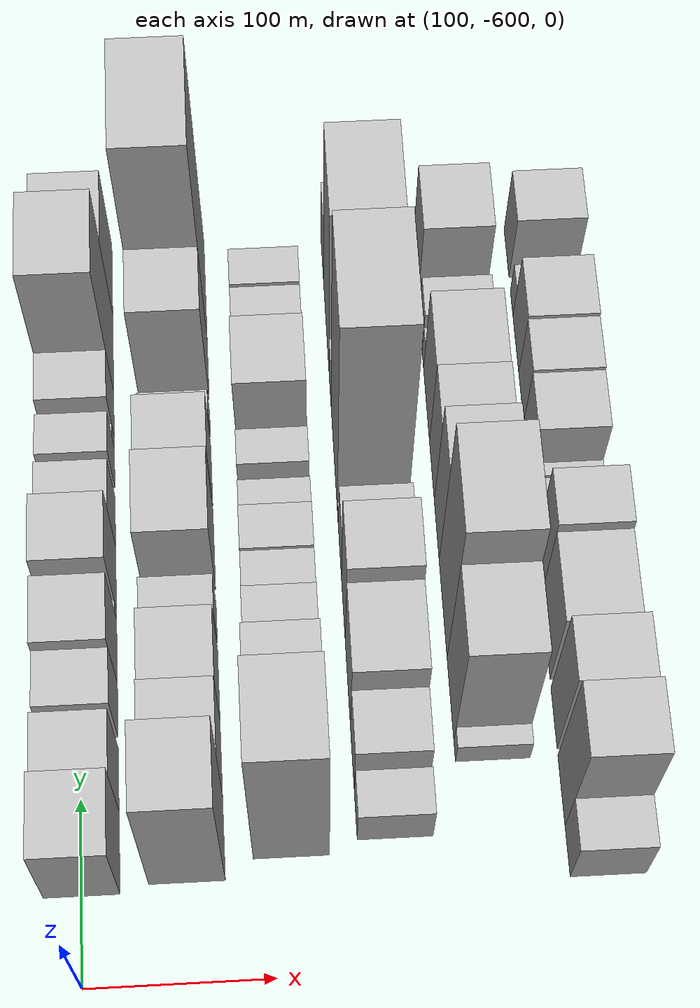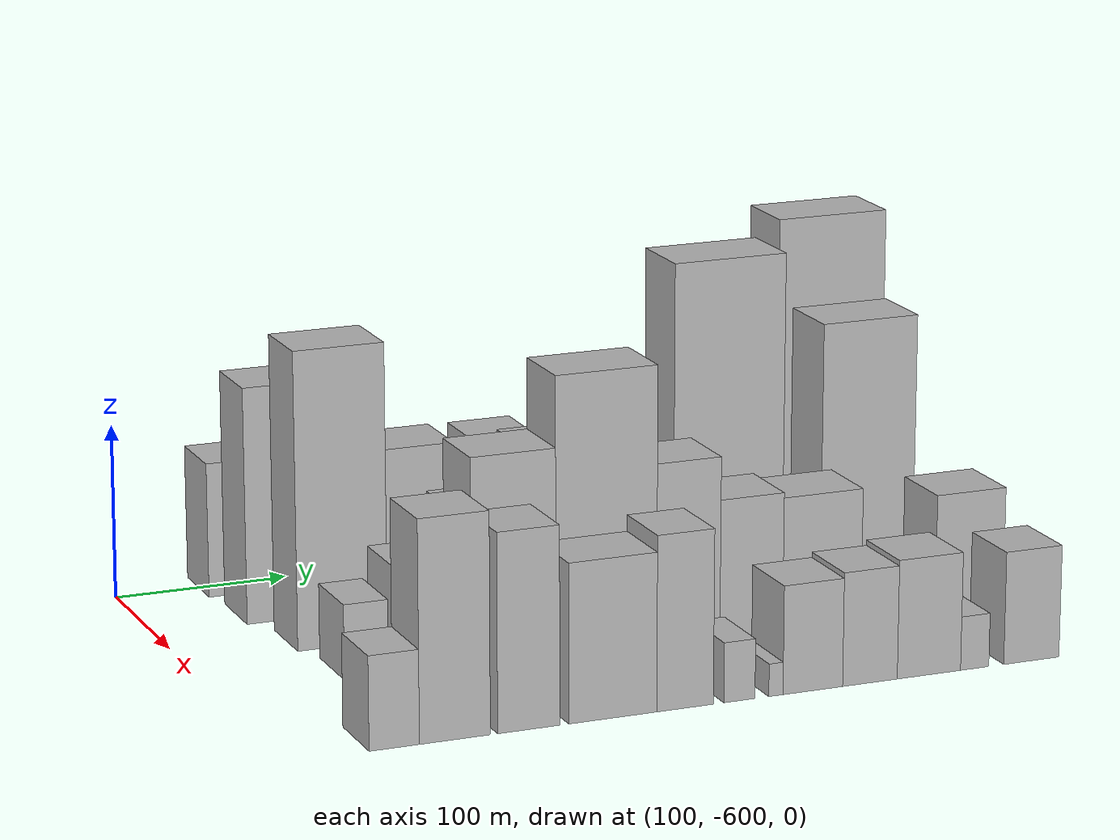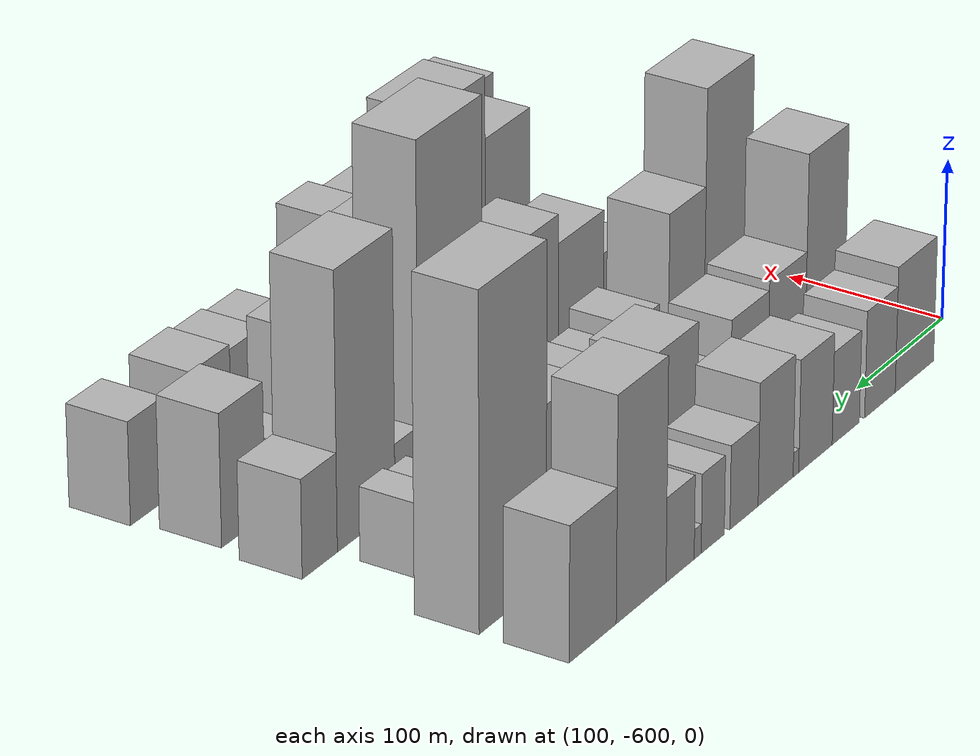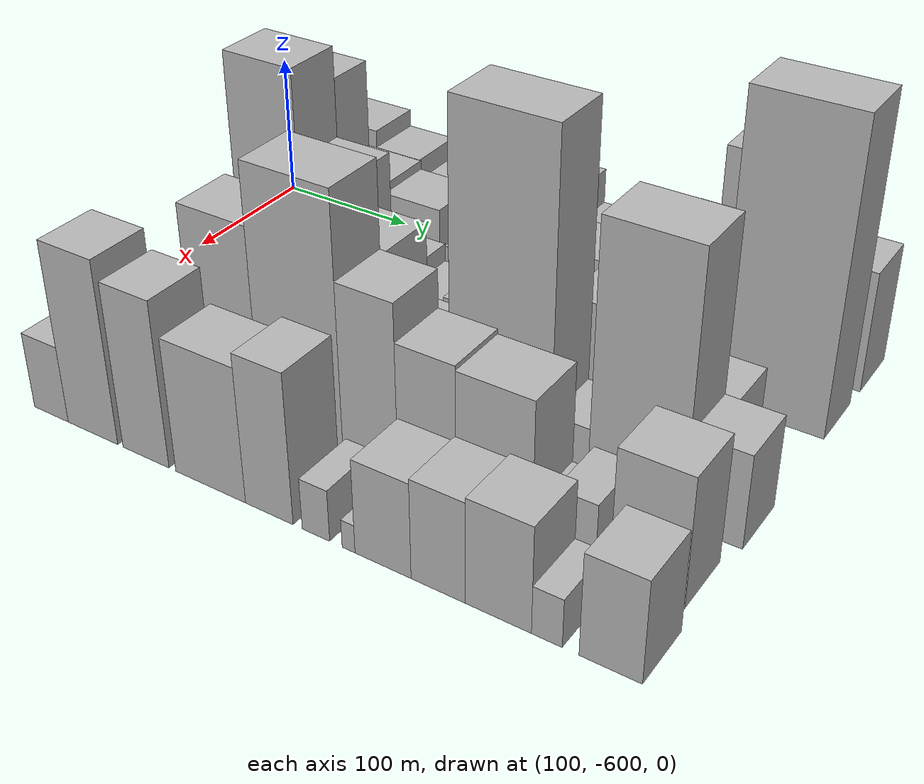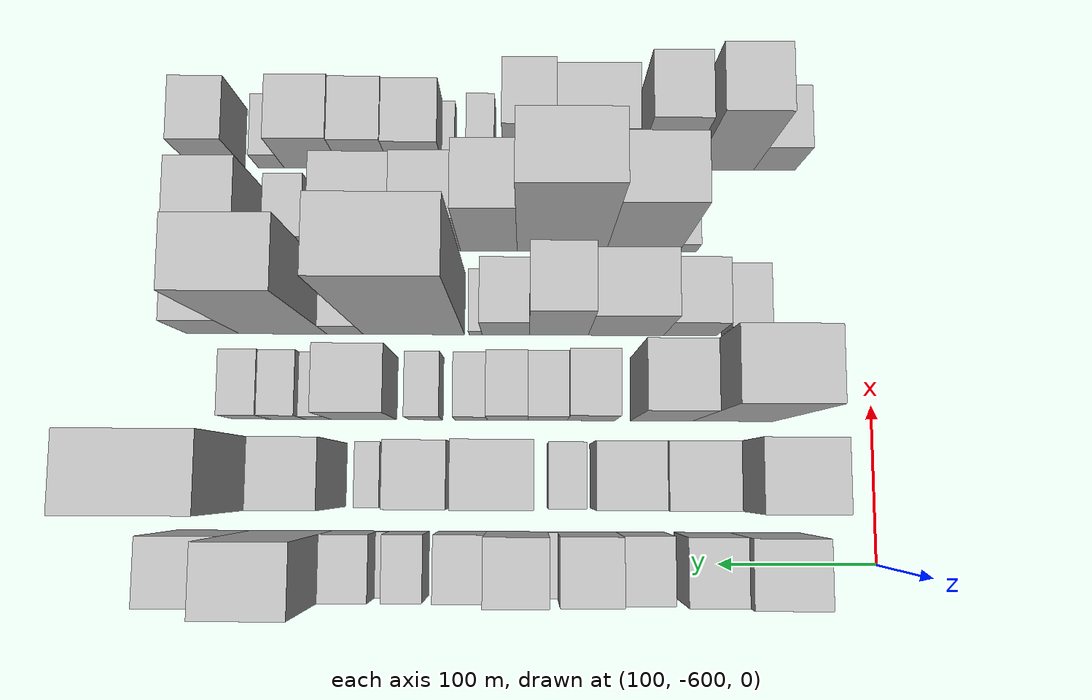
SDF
<sdf version="1.6">
 <world name="default">
  <model name="building_11">
   <static>1</static>
   <pose>100.0000 -529.7301 0 0.000000 0.000000 0.000000</pose>
   <link name="link">
    <pose>0 0 39.00 0 0 0</pose>
    <collision name="collision"><geometry><box><size>40.0000 44.5044 78.0000</size></box></geometry></collision>
    <visual name="visual">
     <cast_shadows>0</cast_shadows>
     <geometry><box><size>40.0000 44.5044 78.0000</size></box></geometry>
     <material>
      <script>
       <uri>model://HANNAS_wall/materials/scripts</uri>
       <uri>model://HANNAS_wall/materials/textures</uri>
       <name>vrc/HANNAS_wall</name>
      </script>
     </material>
    </visual>
   </link>
  </model>
  <model name="building_12">
   <static>1</static>
   <pose>100.0000 -490.0236 0 0.000000 0.000000 0.000000</pose>
   <link name="link">
    <pose>0 0 33.00 0 0 0</pose>
    <collision name="collision"><geometry><box><size>40.0000 34.9087 66.0000</size></box></geometry></collision>
    <visual name="visual">
     <cast_shadows>0</cast_shadows>
     <geometry><box><size>40.0000 34.9087 66.0000</size></box></geometry>
     <material>
      <script>
       <uri>model://HANNAS_wall/materials/scripts</uri>
       <uri>model://HANNAS_wall/materials/textures</uri>
       <name>vrc/HANNAS_wall</name>
      </script>
     </material>
    </visual>
   </link>
  </model>
  <model name="building_13">
   <static>1</static>
   <pose>100.0000 -451.2603 0 0.000000 0.000000 0.000000</pose>
   <link name="link">
    <pose>0 0 28.50 0 0 0</pose>
    <collision name="collision"><geometry><box><size>40.0000 30.6178 57.0000</size></box></geometry></collision>
    <visual name="visual">
     <cast_shadows>0</cast_shadows>
     <geometry><box><size>40.0000 30.6178 57.0000</size></box></geometry>
     <material>
      <script>
       <uri>model://HANNAS_wall/materials/scripts</uri>
       <uri>model://HANNAS_wall/materials/textures</uri>
       <name>vrc/HANNAS_wall</name>
      </script>
     </material>
    </visual>
   </link>
  </model>
  <model name="building_14">
   <static>1</static>
   <pose>100.0000 -417.4339 0 0.000000 0.000000 0.000000</pose>
   <link name="link">
    <pose>0 0 34.50 0 0 0</pose>
    <collision name="collision"><geometry><box><size>40.0000 37.0351 69.0000</size></box></geometry></collision>
    <visual name="visual">
     <cast_shadows>0</cast_shadows>
     <geometry><box><size>40.0000 37.0351 69.0000</size></box></geometry>
     <material>
      <script>
       <uri>model://HANNAS_wall/materials/scripts</uri>
       <uri>model://HANNAS_wall/materials/textures</uri>
       <name>vrc/HANNAS_wall</name>
      </script>
     </material>
    </visual>
   </link>
  </model>
  <model name="building_15">
   <static>1</static>
   <pose>100.0000 -395.8681 0 0.000000 0.000000 0.000000</pose>
   <link name="link">
    <pose>0 0 7.50 0 0 0</pose>
    <collision name="collision"><geometry><box><size>40.0000 6.0965 15.0000</size></box></geometry></collision>
    <visual name="visual">
     <cast_shadows>0</cast_shadows>
     <geometry><box><size>40.0000 6.0965 15.0000</size></box></geometry>
     <material>
      <script>
       <uri>model://HANNAS_wall/materials/scripts</uri>
       <uri>model://HANNAS_wall/materials/textures</uri>
       <name>vrc/HANNAS_wall</name>
      </script>
     </material>
    </visual>
   </link>
  </model>
  <model name="building_16">
   <static>1</static>
   <pose>100.0000 -373.7618 0 0.000000 0.000000 0.000000</pose>
   <link name="link">
    <pose>0 0 37.50 0 0 0</pose>
    <collision name="collision"><geometry><box><size>40.0000 38.1160 75.0000</size></box></geometry></collision>
    <visual name="visual">
     <cast_shadows>0</cast_shadows>
     <geometry><box><size>40.0000 38.1160 75.0000</size></box></geometry>
     <material>
      <script>
       <uri>model://HANNAS_wall/materials/scripts</uri>
       <uri>model://HANNAS_wall/materials/textures</uri>
       <name>vrc/HANNAS_wall</name>
      </script>
     </material>
    </visual>
   </link>
  </model>
  <model name="building_17">
   <static>1</static>
   <pose>100.0000 -339.5787 0 0.000000 0.000000 0.000000</pose>
   <link name="link">
    <pose>0 0 25.50 0 0 0</pose>
    <collision name="collision"><geometry><box><size>40.0000 30.2502 51.0000</size></box></geometry></collision>
    <visual name="visual">
     <cast_shadows>0</cast_shadows>
     <geometry><box><size>40.0000 30.2502 51.0000</size></box></geometry>
     <material>
      <script>
       <uri>model://HANNAS_wall/materials/scripts</uri>
       <uri>model://HANNAS_wall/materials/textures</uri>
       <name>vrc/HANNAS_wall</name>
      </script>
     </material>
    </visual>
   </link>
  </model>
  <model name="building_18">
   <static>1</static>
   <pose>100.0000 -306.2498 0 0.000000 0.000000 0.000000</pose>
   <link name="link">
    <pose>0 0 24.00 0 0 0</pose>
    <collision name="collision"><geometry><box><size>40.0000 24.4077 48.0000</size></box></geometry></collision>
    <visual name="visual">
     <cast_shadows>0</cast_shadows>
     <geometry><box><size>40.0000 24.4077 48.0000</size></box></geometry>
     <material>
      <script>
       <uri>model://HANNAS_wall/materials/scripts</uri>
       <uri>model://HANNAS_wall/materials/textures</uri>
       <name>vrc/HANNAS_wall</name>
      </script>
     </material>
    </visual>
   </link>
  </model>
  <model name="building_19">
   <static>1</static>
   <pose>100.0000 -290.3499 0 0.000000 0.000000 0.000000</pose>
   <link name="link">
    <pose>0 0 9.00 0 0 0</pose>
    <collision name="collision"><geometry><box><size>40.0000 7.3921 18.0000</size></box></geometry></collision>
    <visual name="visual">
     <cast_shadows>0</cast_shadows>
     <geometry><box><size>40.0000 7.3921 18.0000</size></box></geometry>
     <material>
      <script>
       <uri>model://HANNAS_wall/materials/scripts</uri>
       <uri>model://HANNAS_wall/materials/textures</uri>
       <name>vrc/HANNAS_wall</name>
      </script>
     </material>
    </visual>
   </link>
  </model>
  <model name="building_20">
   <static>1</static>
   <pose>100.0000 -272.0028 0 0.000000 0.000000 0.000000</pose>
   <link name="link">
    <pose>0 0 25.50 0 0 0</pose>
    <collision name="collision"><geometry><box><size>40.0000 29.3020 51.0000</size></box></geometry></collision>
    <visual name="visual">
     <cast_shadows>0</cast_shadows>
     <geometry><box><size>40.0000 29.3020 51.0000</size></box></geometry>
     <material>
      <script>
       <uri>model://HANNAS_wall/materials/scripts</uri>
       <uri>model://HANNAS_wall/materials/textures</uri>
       <name>vrc/HANNAS_wall</name>
      </script>
     </material>
    </visual>
   </link>
  </model>
  <model name="building_21">
   <static>1</static>
   <pose>100.0000 -231.8387 0 0.000000 0.000000 0.000000</pose>
   <link name="link">
    <pose>0 0 67.50 0 0 0</pose>
    <collision name="collision"><geometry><box><size>40.0000 51.0263 135.0000</size></box></geometry></collision>
    <visual name="visual">
     <cast_shadows>0</cast_shadows>
     <geometry><box><size>40.0000 51.0263 135.0000</size></box></geometry>
     <material>
      <script>
       <uri>model://HANNAS_wall/materials/scripts</uri>
       <uri>model://HANNAS_wall/materials/textures</uri>
       <name>vrc/HANNAS_wall</name>
      </script>
     </material>
    </visual>
   </link>
  </model>
  <model name="building_22">
   <static>1</static>
   <pose>100.0000 -182.7583 0 0.000000 0.000000 0.000000</pose>
   <link name="link">
    <pose>0 0 40.50 0 0 0</pose>
    <collision name="collision"><geometry><box><size>40.0000 47.1345 81.0000</size></box></geometry></collision>
    <visual name="visual">
     <cast_shadows>0</cast_shadows>
     <geometry><box><size>40.0000 47.1345 81.0000</size></box></geometry>
     <material>
      <script>
       <uri>model://HANNAS_wall/materials/scripts</uri>
       <uri>model://HANNAS_wall/materials/textures</uri>
       <name>vrc/HANNAS_wall</name>
      </script>
     </material>
    </visual>
   </link>
  </model>
  <model name="building_62">
   <static>1</static>
   <pose>155.0000 -525.0778 0 0.000000 0.000000 0.000000</pose>
   <link name="link">
    <pose>0 0 67.50 0 0 0</pose>
    <collision name="collision"><geometry><box><size>40.0000 45.0035 135.0000</size></box></geometry></collision>
    <visual name="visual">
     <cast_shadows>0</cast_shadows>
     <geometry><box><size>40.0000 45.0035 135.0000</size></box></geometry>
     <material>
      <script>
       <uri>model://HANNAS_wall/materials/scripts</uri>
       <uri>model://HANNAS_wall/materials/textures</uri>
       <name>vrc/HANNAS_wall</name>
      </script>
     </material>
    </visual>
   </link>
  </model>
  <model name="building_63">
   <static>1</static>
   <pose>155.0000 -481.7645 0 0.000000 0.000000 0.000000</pose>
   <link name="link">
    <pose>0 0 37.50 0 0 0</pose>
    <collision name="collision"><geometry><box><size>40.0000 41.6231 75.0000</size></box></geometry></collision>
    <visual name="visual">
     <cast_shadows>0</cast_shadows>
     <geometry><box><size>40.0000 41.6231 75.0000</size></box></geometry>
     <material>
      <script>
       <uri>model://HANNAS_wall/materials/scripts</uri>
       <uri>model://HANNAS_wall/materials/textures</uri>
       <name>vrc/HANNAS_wall</name>
      </script>
     </material>
    </visual>
   </link>
  </model>
  <model name="building_64">
   <static>1</static>
   <pose>155.0000 -440.2907 0 0.000000 0.000000 0.000000</pose>
   <link name="link">
    <pose>0 0 34.50 0 0 0</pose>
    <collision name="collision"><geometry><box><size>40.0000 41.3244 69.0000</size></box></geometry></collision>
    <visual name="visual">
     <cast_shadows>0</cast_shadows>
     <geometry><box><size>40.0000 41.3244 69.0000</size></box></geometry>
     <material>
      <script>
       <uri>model://HANNAS_wall/materials/scripts</uri>
       <uri>model://HANNAS_wall/materials/textures</uri>
       <name>vrc/HANNAS_wall</name>
      </script>
     </material>
    </visual>
   </link>
  </model>
  <model name="building_65">
   <static>1</static>
   <pose>155.0000 -404.1163 0 0.000000 0.000000 0.000000</pose>
   <link name="link">
    <pose>0 0 22.50 0 0 0</pose>
    <collision name="collision"><geometry><box><size>40.0000 23.0244 45.0000</size></box></geometry></collision>
    <visual name="visual">
     <cast_shadows>0</cast_shadows>
     <geometry><box><size>40.0000 23.0244 45.0000</size></box></geometry>
     <material>
      <script>
       <uri>model://HANNAS_wall/materials/scripts</uri>
       <uri>model://HANNAS_wall/materials/textures</uri>
       <name>vrc/HANNAS_wall</name>
      </script>
     </material>
    </visual>
   </link>
  </model>
  <model name="building_66">
   <static>1</static>
   <pose>155.0000 -359.7399 0 0.000000 0.000000 0.000000</pose>
   <link name="link">
    <pose>0 0 42.00 0 0 0</pose>
    <collision name="collision"><geometry><box><size>40.0000 47.7284 84.0000</size></box></geometry></collision>
    <visual name="visual">
     <cast_shadows>0</cast_shadows>
     <geometry><box><size>40.0000 47.7284 84.0000</size></box></geometry>
     <material>
      <script>
       <uri>model://HANNAS_wall/materials/scripts</uri>
       <uri>model://HANNAS_wall/materials/textures</uri>
       <name>vrc/HANNAS_wall</name>
      </script>
     </material>
    </visual>
   </link>
  </model>
  <model name="building_67">
   <static>1</static>
   <pose>155.0000 -314.2987 0 0.000000 0.000000 0.000000</pose>
   <link name="link">
    <pose>0 0 34.50 0 0 0</pose>
    <collision name="collision"><geometry><box><size>40.0000 37.1539 69.0000</size></box></geometry></collision>
    <visual name="visual">
     <cast_shadows>0</cast_shadows>
     <geometry><box><size>40.0000 37.1539 69.0000</size></box></geometry>
     <material>
      <script>
       <uri>model://HANNAS_wall/materials/scripts</uri>
       <uri>model://HANNAS_wall/materials/textures</uri>
       <name>vrc/HANNAS_wall</name>
      </script>
     </material>
    </visual>
   </link>
  </model>
  <model name="building_68">
   <static>1</static>
   <pose>155.0000 -281.9596 0 0.000000 0.000000 0.000000</pose>
   <link name="link">
    <pose>0 0 15.00 0 0 0</pose>
    <collision name="collision"><geometry><box><size>40.0000 15.5244 30.0000</size></box></geometry></collision>
    <visual name="visual">
     <cast_shadows>0</cast_shadows>
     <geometry><box><size>40.0000 15.5244 30.0000</size></box></geometry>
     <material>
      <script>
       <uri>model://HANNAS_wall/materials/scripts</uri>
       <uri>model://HANNAS_wall/materials/textures</uri>
       <name>vrc/HANNAS_wall</name>
      </script>
     </material>
    </visual>
   </link>
  </model>
  <model name="building_69">
   <static>1</static>
   <pose>155.0000 -245.8020 0 0.000000 0.000000 0.000000</pose>
   <link name="link">
    <pose>0 0 52.50 0 0 0</pose>
    <collision name="collision"><geometry><box><size>40.0000 38.7908 105.0000</size></box></geometry></collision>
    <visual name="visual">
     <cast_shadows>0</cast_shadows>
     <geometry><box><size>40.0000 38.7908 105.0000</size></box></geometry>
     <material>
      <script>
       <uri>model://HANNAS_wall/materials/scripts</uri>
       <uri>model://HANNAS_wall/materials/textures</uri>
       <name>vrc/HANNAS_wall</name>
      </script>
     </material>
    </visual>
   </link>
  </model>
  <model name="building_70">
   <static>1</static>
   <pose>155.0000 -193.0679 0 0.000000 0.000000 0.000000</pose>
   <link name="link">
    <pose>0 0 100.50 0 0 0</pose>
    <collision name="collision"><geometry><box><size>40.0000 66.6774 201.0000</size></box></geometry></collision>
    <visual name="visual">
     <cast_shadows>0</cast_shadows>
     <geometry><box><size>40.0000 66.6774 201.0000</size></box></geometry>
     <material>
      <script>
       <uri>model://HANNAS_wall/materials/scripts</uri>
       <uri>model://HANNAS_wall/materials/textures</uri>
       <name>vrc/HANNAS_wall</name>
      </script>
     </material>
    </visual>
   </link>
  </model>
  <model name="building_113">
   <static>1</static>
   <pose>210.0000 -511.0529 0 0.000000 0.000000 0.000000</pose>
   <link name="link">
    <pose>0 0 84.00 0 0 0</pose>
    <collision name="collision"><geometry><box><size>40.0000 51.6757 168.0000</size></box></geometry></collision>
    <visual name="visual">
     <cast_shadows>0</cast_shadows>
     <geometry><box><size>40.0000 51.6757 168.0000</size></box></geometry>
     <material>
      <script>
       <uri>model://HANNAS_wall/materials/scripts</uri>
       <uri>model://HANNAS_wall/materials/textures</uri>
       <name>vrc/HANNAS_wall</name>
      </script>
     </material>
    </visual>
   </link>
  </model>
  <model name="building_114">
   <static>1</static>
   <pose>210.0000 -465.4409 0 0.000000 0.000000 0.000000</pose>
   <link name="link">
    <pose>0 0 54.00 0 0 0</pose>
    <collision name="collision"><geometry><box><size>40.0000 39.5483 108.0000</size></box></geometry></collision>
    <visual name="visual">
     <cast_shadows>0</cast_shadows>
     <geometry><box><size>40.0000 39.5483 108.0000</size></box></geometry>
     <material>
      <script>
       <uri>model://HANNAS_wall/materials/scripts</uri>
       <uri>model://HANNAS_wall/materials/textures</uri>
       <name>vrc/HANNAS_wall</name>
      </script>
     </material>
    </visual>
   </link>
  </model>
  <model name="building_115">
   <static>1</static>
   <pose>210.0000 -420.4967 0 0.000000 0.000000 0.000000</pose>
   <link name="link">
    <pose>0 0 28.50 0 0 0</pose>
    <collision name="collision"><geometry><box><size>40.0000 30.3399 57.0000</size></box></geometry></collision>
    <visual name="visual">
     <cast_shadows>0</cast_shadows>
     <geometry><box><size>40.0000 30.3399 57.0000</size></box></geometry>
     <material>
      <script>
       <uri>model://HANNAS_wall/materials/scripts</uri>
       <uri>model://HANNAS_wall/materials/textures</uri>
       <name>vrc/HANNAS_wall</name>
      </script>
     </material>
    </visual>
   </link>
  </model>
  <model name="building_116">
   <static>1</static>
   <pose>210.0000 -392.7765 0 0.000000 0.000000 0.000000</pose>
   <link name="link">
    <pose>0 0 22.50 0 0 0</pose>
    <collision name="collision"><geometry><box><size>40.0000 25.1006 45.0000</size></box></geometry></collision>
    <visual name="visual">
     <cast_shadows>0</cast_shadows>
     <geometry><box><size>40.0000 25.1006 45.0000</size></box></geometry>
     <material>
      <script>
       <uri>model://HANNAS_wall/materials/scripts</uri>
       <uri>model://HANNAS_wall/materials/textures</uri>
       <name>vrc/HANNAS_wall</name>
      </script>
     </material>
    </visual>
   </link>
  </model>
  <model name="building_117">
   <static>1</static>
   <pose>210.0000 -367.3617 0 0.000000 0.000000 0.000000</pose>
   <link name="link">
    <pose>0 0 24.00 0 0 0</pose>
    <collision name="collision"><geometry><box><size>40.0000 25.7290 48.0000</size></box></geometry></collision>
    <visual name="visual">
     <cast_shadows>0</cast_shadows>
     <geometry><box><size>40.0000 25.7290 48.0000</size></box></geometry>
     <material>
      <script>
       <uri>model://HANNAS_wall/materials/scripts</uri>
       <uri>model://HANNAS_wall/materials/textures</uri>
       <name>vrc/HANNAS_wall</name>
      </script>
     </material>
    </visual>
   </link>
  </model>
  <model name="building_118">
   <static>1</static>
   <pose>210.0000 -344.2353 0 0.000000 0.000000 0.000000</pose>
   <link name="link">
    <pose>0 0 18.00 0 0 0</pose>
    <collision name="collision"><geometry><box><size>40.0000 20.5239 36.0000</size></box></geometry></collision>
    <visual name="visual">
     <cast_shadows>0</cast_shadows>
     <geometry><box><size>40.0000 20.5239 36.0000</size></box></geometry>
     <material>
      <script>
       <uri>model://HANNAS_wall/materials/scripts</uri>
       <uri>model://HANNAS_wall/materials/textures</uri>
       <name>vrc/HANNAS_wall</name>
      </script>
     </material>
    </visual>
   </link>
  </model>
  <model name="building_119">
   <static>1</static>
   <pose>210.0000 -315.2456 0 0.000000 0.000000 0.000000</pose>
   <link name="link">
    <pose>0 0 19.50 0 0 0</pose>
    <collision name="collision"><geometry><box><size>40.0000 21.4555 39.0000</size></box></geometry></collision>
    <visual name="visual">
     <cast_shadows>0</cast_shadows>
     <geometry><box><size>40.0000 21.4555 39.0000</size></box></geometry>
     <material>
      <script>
       <uri>model://HANNAS_wall/materials/scripts</uri>
       <uri>model://HANNAS_wall/materials/textures</uri>
       <name>vrc/HANNAS_wall</name>
      </script>
     </material>
    </visual>
   </link>
  </model>
  <model name="building_120">
   <static>1</static>
   <pose>210.0000 -275.7228 0 0.000000 0.000000 0.000000</pose>
   <link name="link">
    <pose>0 0 39.00 0 0 0</pose>
    <collision name="collision"><geometry><box><size>40.0000 41.5900 78.0000</size></box></geometry></collision>
    <visual name="visual">
     <cast_shadows>0</cast_shadows>
     <geometry><box><size>40.0000 41.5900 78.0000</size></box></geometry>
     <material>
      <script>
       <uri>model://HANNAS_wall/materials/scripts</uri>
       <uri>model://HANNAS_wall/materials/textures</uri>
       <name>vrc/HANNAS_wall</name>
      </script>
     </material>
    </visual>
   </link>
  </model>
  <model name="building_121">
   <static>1</static>
   <pose>210.0000 -246.7720 0 0.000000 0.000000 0.000000</pose>
   <link name="link">
    <pose>0 0 15.00 0 0 0</pose>
    <collision name="collision"><geometry><box><size>40.0000 16.3116 30.0000</size></box></geometry></collision>
    <visual name="visual">
     <cast_shadows>0</cast_shadows>
     <geometry><box><size>40.0000 16.3116 30.0000</size></box></geometry>
     <material>
      <script>
       <uri>model://HANNAS_wall/materials/scripts</uri>
       <uri>model://HANNAS_wall/materials/textures</uri>
       <name>vrc/HANNAS_wall</name>
      </script>
     </material>
    </visual>
   </link>
  </model>
  <model name="building_122">
   <static>1</static>
   <pose>210.0000 -227.2028 0 0.000000 0.000000 0.000000</pose>
   <link name="link">
    <pose>0 0 21.00 0 0 0</pose>
    <collision name="collision"><geometry><box><size>40.0000 22.8269 42.0000</size></box></geometry></collision>
    <visual name="visual">
     <cast_shadows>0</cast_shadows>
     <geometry><box><size>40.0000 22.8269 42.0000</size></box></geometry>
     <material>
      <script>
       <uri>model://HANNAS_wall/materials/scripts</uri>
       <uri>model://HANNAS_wall/materials/textures</uri>
       <name>vrc/HANNAS_wall</name>
      </script>
     </material>
    </visual>
   </link>
  </model>
  <model name="building_123">
   <static>1</static>
   <pose>210.0000 -204.0848 0 0.000000 0.000000 0.000000</pose>
   <link name="link">
    <pose>0 0 22.50 0 0 0</pose>
    <collision name="collision"><geometry><box><size>40.0000 23.4090 45.0000</size></box></geometry></collision>
    <visual name="visual">
     <cast_shadows>0</cast_shadows>
     <geometry><box><size>40.0000 23.4090 45.0000</size></box></geometry>
     <material>
      <script>
       <uri>model://HANNAS_wall/materials/scripts</uri>
       <uri>model://HANNAS_wall/materials/textures</uri>
       <name>vrc/HANNAS_wall</name>
      </script>
     </material>
    </visual>
   </link>
  </model>
  <model name="building_169">
   <static>1</static>
   <pose>265.0000 -517.0443 0 0.000000 0.000000 0.000000</pose>
   <link name="link">
    <pose>0 0 21.00 0 0 0</pose>
    <collision name="collision"><geometry><box><size>40.0000 24.9241 42.0000</size></box></geometry></collision>
    <visual name="visual">
     <cast_shadows>0</cast_shadows>
     <geometry><box><size>40.0000 24.9241 42.0000</size></box></geometry>
     <material>
      <script>
       <uri>model://HANNAS_wall/materials/scripts</uri>
       <uri>model://HANNAS_wall/materials/textures</uri>
       <name>vrc/HANNAS_wall</name>
      </script>
     </material>
    </visual>
   </link>
  </model>
  <model name="building_170">
   <static>1</static>
   <pose>265.0000 -484.4901 0 0.000000 0.000000 0.000000</pose>
   <link name="link">
    <pose>0 0 30.00 0 0 0</pose>
    <collision name="collision"><geometry><box><size>40.0000 34.1844 60.0000</size></box></geometry></collision>
    <visual name="visual">
     <cast_shadows>0</cast_shadows>
     <geometry><box><size>40.0000 34.1844 60.0000</size></box></geometry>
     <material>
      <script>
       <uri>model://HANNAS_wall/materials/scripts</uri>
       <uri>model://HANNAS_wall/materials/textures</uri>
       <name>vrc/HANNAS_wall</name>
      </script>
     </material>
    </visual>
   </link>
  </model>
  <model name="building_171">
   <static>1</static>
   <pose>265.0000 -443.0981 0 0.000000 0.000000 0.000000</pose>
   <link name="link">
    <pose>0 0 43.50 0 0 0</pose>
    <collision name="collision"><geometry><box><size>40.0000 48.5995 87.0000</size></box></geometry></collision>
    <visual name="visual">
     <cast_shadows>0</cast_shadows>
     <geometry><box><size>40.0000 48.5995 87.0000</size></box></geometry>
     <material>
      <script>
       <uri>model://HANNAS_wall/materials/scripts</uri>
       <uri>model://HANNAS_wall/materials/textures</uri>
       <name>vrc/HANNAS_wall</name>
      </script>
     </material>
    </visual>
   </link>
  </model>
  <model name="building_172">
   <static>1</static>
   <pose>265.0000 -399.8965 0 0.000000 0.000000 0.000000</pose>
   <link name="link">
    <pose>0 0 52.50 0 0 0</pose>
    <collision name="collision"><geometry><box><size>40.0000 37.8038 105.0000</size></box></geometry></collision>
    <visual name="visual">
     <cast_shadows>0</cast_shadows>
     <geometry><box><size>40.0000 37.8038 105.0000</size></box></geometry>
     <material>
      <script>
       <uri>model://HANNAS_wall/materials/scripts</uri>
       <uri>model://HANNAS_wall/materials/textures</uri>
       <name>vrc/HANNAS_wall</name>
      </script>
     </material>
    </visual>
   </link>
  </model>
  <model name="building_173">
   <static>1</static>
   <pose>265.0000 -365.7394 0 0.000000 0.000000 0.000000</pose>
   <link name="link">
    <pose>0 0 28.50 0 0 0</pose>
    <collision name="collision"><geometry><box><size>40.0000 30.5105 57.0000</size></box></geometry></collision>
    <visual name="visual">
     <cast_shadows>0</cast_shadows>
     <geometry><box><size>40.0000 30.5105 57.0000</size></box></geometry>
     <material>
      <script>
       <uri>model://HANNAS_wall/materials/scripts</uri>
       <uri>model://HANNAS_wall/materials/textures</uri>
       <name>vrc/HANNAS_wall</name>
      </script>
     </material>
    </visual>
   </link>
  </model>
  <model name="building_174">
   <static>1</static>
   <pose>265.0000 -346.3231 0 0.000000 0.000000 0.000000</pose>
   <link name="link">
    <pose>0 0 9.00 0 0 0</pose>
    <collision name="collision"><geometry><box><size>40.0000 8.3220 18.0000</size></box></geometry></collision>
    <visual name="visual">
     <cast_shadows>0</cast_shadows>
     <geometry><box><size>40.0000 8.3220 18.0000</size></box></geometry>
     <material>
      <script>
       <uri>model://HANNAS_wall/materials/scripts</uri>
       <uri>model://HANNAS_wall/materials/textures</uri>
       <name>vrc/HANNAS_wall</name>
      </script>
     </material>
    </visual>
   </link>
  </model>
  <model name="building_175">
   <static>1</static>
   <pose>265.0000 -306.4758 0 0.000000 0.000000 0.000000</pose>
   <link name="link">
    <pose>0 0 105.00 0 0 0</pose>
    <collision name="collision"><geometry><box><size>40.0000 65.3727 210.0000</size></box></geometry></collision>
    <visual name="visual">
     <cast_shadows>0</cast_shadows>
     <geometry><box><size>40.0000 65.3727 210.0000</size></box></geometry>
     <material>
      <script>
       <uri>model://HANNAS_wall/materials/scripts</uri>
       <uri>model://HANNAS_wall/materials/textures</uri>
       <name>vrc/HANNAS_wall</name>
      </script>
     </material>
    </visual>
   </link>
  </model>
  <model name="building_176">
   <static>1</static>
   <pose>265.0000 -262.1390 0 0.000000 0.000000 0.000000</pose>
   <link name="link">
    <pose>0 0 19.50 0 0 0</pose>
    <collision name="collision"><geometry><box><size>40.0000 23.3009 39.0000</size></box></geometry></collision>
    <visual name="visual">
     <cast_shadows>0</cast_shadows>
     <geometry><box><size>40.0000 23.3009 39.0000</size></box></geometry>
     <material>
      <script>
       <uri>model://HANNAS_wall/materials/scripts</uri>
       <uri>model://HANNAS_wall/materials/textures</uri>
       <name>vrc/HANNAS_wall</name>
      </script>
     </material>
    </visual>
   </link>
  </model>
  <model name="building_177">
   <static>1</static>
   <pose>265.0000 -222.0979 0 0.000000 0.000000 0.000000</pose>
   <link name="link">
    <pose>0 0 84.00 0 0 0</pose>
    <collision name="collision"><geometry><box><size>40.0000 56.7813 168.0000</size></box></geometry></collision>
    <visual name="visual">
     <cast_shadows>0</cast_shadows>
     <geometry><box><size>40.0000 56.7813 168.0000</size></box></geometry>
     <material>
      <script>
       <uri>model://HANNAS_wall/materials/scripts</uri>
       <uri>model://HANNAS_wall/materials/textures</uri>
       <name>vrc/HANNAS_wall</name>
      </script>
     </material>
    </visual>
   </link>
  </model>
  <model name="building_178">
   <static>1</static>
   <pose>265.0000 -176.7326 0 0.000000 0.000000 0.000000</pose>
   <link name="link">
    <pose>0 0 30.00 0 0 0</pose>
    <collision name="collision"><geometry><box><size>40.0000 33.9493 60.0000</size></box></geometry></collision>
    <visual name="visual">
     <cast_shadows>0</cast_shadows>
     <geometry><box><size>40.0000 33.9493 60.0000</size></box></geometry>
     <material>
      <script>
       <uri>model://HANNAS_wall/materials/scripts</uri>
       <uri>model://HANNAS_wall/materials/textures</uri>
       <name>vrc/HANNAS_wall</name>
      </script>
     </material>
    </visual>
   </link>
  </model>
  <model name="building_220">
   <static>1</static>
   <pose>320.0000 -483.8274 0 0.000000 0.000000 0.000000</pose>
   <link name="link">
    <pose>0 0 12.00 0 0 0</pose>
    <collision name="collision"><geometry><box><size>40.0000 11.2872 24.0000</size></box></geometry></collision>
    <visual name="visual">
     <cast_shadows>0</cast_shadows>
     <geometry><box><size>40.0000 11.2872 24.0000</size></box></geometry>
     <material>
      <script>
       <uri>model://HANNAS_wall/materials/scripts</uri>
       <uri>model://HANNAS_wall/materials/textures</uri>
       <name>vrc/HANNAS_wall</name>
      </script>
     </material>
    </visual>
   </link>
  </model>
  <model name="building_221">
   <static>1</static>
   <pose>320.0000 -454.3906 0 0.000000 0.000000 0.000000</pose>
   <link name="link">
    <pose>0 0 66.00 0 0 0</pose>
    <collision name="collision"><geometry><box><size>40.0000 47.5864 132.0000</size></box></geometry></collision>
    <visual name="visual">
     <cast_shadows>0</cast_shadows>
     <geometry><box><size>40.0000 47.5864 132.0000</size></box></geometry>
     <material>
      <script>
       <uri>model://HANNAS_wall/materials/scripts</uri>
       <uri>model://HANNAS_wall/materials/textures</uri>
       <name>vrc/HANNAS_wall</name>
      </script>
     </material>
    </visual>
   </link>
  </model>
  <model name="building_222">
   <static>1</static>
   <pose>320.0000 -401.6558 0 0.000000 0.000000 0.000000</pose>
   <link name="link">
    <pose>0 0 85.50 0 0 0</pose>
    <collision name="collision"><geometry><box><size>40.0000 57.8831 171.0000</size></box></geometry></collision>
    <visual name="visual">
     <cast_shadows>0</cast_shadows>
     <geometry><box><size>40.0000 57.8831 171.0000</size></box></geometry>
     <material>
      <script>
       <uri>model://HANNAS_wall/materials/scripts</uri>
       <uri>model://HANNAS_wall/materials/textures</uri>
       <name>vrc/HANNAS_wall</name>
      </script>
     </material>
    </visual>
   </link>
  </model>
  <model name="building_223">
   <static>1</static>
   <pose>320.0000 -354.2840 0 0.000000 0.000000 0.000000</pose>
   <link name="link">
    <pose>0 0 58.50 0 0 0</pose>
    <collision name="collision"><geometry><box><size>40.0000 36.8606 117.0000</size></box></geometry></collision>
    <visual name="visual">
     <cast_shadows>0</cast_shadows>
     <geometry><box><size>40.0000 36.8606 117.0000</size></box></geometry>
     <material>
      <script>
       <uri>model://HANNAS_wall/materials/scripts</uri>
       <uri>model://HANNAS_wall/materials/textures</uri>
       <name>vrc/HANNAS_wall</name>
      </script>
     </material>
    </visual>
   </link>
  </model>
  <model name="building_224">
   <static>1</static>
   <pose>320.0000 -317.3504 0 0.000000 0.000000 0.000000</pose>
   <link name="link">
    <pose>0 0 46.50 0 0 0</pose>
    <collision name="collision"><geometry><box><size>40.0000 37.0066 93.0000</size></box></geometry></collision>
    <visual name="visual">
     <cast_shadows>0</cast_shadows>
     <geometry><box><size>40.0000 37.0066 93.0000</size></box></geometry>
     <material>
      <script>
       <uri>model://HANNAS_wall/materials/scripts</uri>
       <uri>model://HANNAS_wall/materials/textures</uri>
       <name>vrc/HANNAS_wall</name>
      </script>
     </material>
    </visual>
   </link>
  </model>
  <model name="building_225">
   <static>1</static>
   <pose>320.0000 -275.4547 0 0.000000 0.000000 0.000000</pose>
   <link name="link">
    <pose>0 0 45.00 0 0 0</pose>
    <collision name="collision"><geometry><box><size>40.0000 46.7848 90.0000</size></box></geometry></collision>
    <visual name="visual">
     <cast_shadows>0</cast_shadows>
     <geometry><box><size>40.0000 46.7848 90.0000</size></box></geometry>
     <material>
      <script>
       <uri>model://HANNAS_wall/materials/scripts</uri>
       <uri>model://HANNAS_wall/materials/textures</uri>
       <name>vrc/HANNAS_wall</name>
      </script>
     </material>
    </visual>
   </link>
  </model>
  <model name="building_226">
   <static>1</static>
   <pose>320.0000 -245.9152 0 0.000000 0.000000 0.000000</pose>
   <link name="link">
    <pose>0 0 13.50 0 0 0</pose>
    <collision name="collision"><geometry><box><size>40.0000 12.2943 27.0000</size></box></geometry></collision>
    <visual name="visual">
     <cast_shadows>0</cast_shadows>
     <geometry><box><size>40.0000 12.2943 27.0000</size></box></geometry>
     <material>
      <script>
       <uri>model://HANNAS_wall/materials/scripts</uri>
       <uri>model://HANNAS_wall/materials/textures</uri>
       <name>vrc/HANNAS_wall</name>
      </script>
     </material>
    </visual>
   </link>
  </model>
  <model name="building_227">
   <static>1</static>
   <pose>320.0000 -227.4415 0 0.000000 0.000000 0.000000</pose>
   <link name="link">
    <pose>0 0 21.00 0 0 0</pose>
    <collision name="collision"><geometry><box><size>40.0000 24.6530 42.0000</size></box></geometry></collision>
    <visual name="visual">
     <cast_shadows>0</cast_shadows>
     <geometry><box><size>40.0000 24.6530 42.0000</size></box></geometry>
     <material>
      <script>
       <uri>model://HANNAS_wall/materials/scripts</uri>
       <uri>model://HANNAS_wall/materials/textures</uri>
       <name>vrc/HANNAS_wall</name>
      </script>
     </material>
    </visual>
   </link>
  </model>
  <model name="building_228">
   <static>1</static>
   <pose>320.0000 -186.2869 0 0.000000 0.000000 0.000000</pose>
   <link name="link">
    <pose>0 0 40.50 0 0 0</pose>
    <collision name="collision"><geometry><box><size>40.0000 41.6562 81.0000</size></box></geometry></collision>
    <visual name="visual">
     <cast_shadows>0</cast_shadows>
     <geometry><box><size>40.0000 41.6562 81.0000</size></box></geometry>
     <material>
      <script>
       <uri>model://HANNAS_wall/materials/scripts</uri>
       <uri>model://HANNAS_wall/materials/textures</uri>
       <name>vrc/HANNAS_wall</name>
      </script>
     </material>
    </visual>
   </link>
  </model>
  <model name="building_274">
   <static>1</static>
   <pose>375.0000 -541.4654 0 0.000000 0.000000 0.000000</pose>
   <link name="link">
    <pose>0 0 25.50 0 0 0</pose>
    <collision name="collision"><geometry><box><size>40.0000 27.2171 51.0000</size></box></geometry></collision>
    <visual name="visual">
     <cast_shadows>0</cast_shadows>
     <geometry><box><size>40.0000 27.2171 51.0000</size></box></geometry>
     <material>
      <script>
       <uri>model://HANNAS_wall/materials/scripts</uri>
       <uri>model://HANNAS_wall/materials/textures</uri>
       <name>vrc/HANNAS_wall</name>
      </script>
     </material>
    </visual>
   </link>
  </model>
  <model name="building_275">
   <static>1</static>
   <pose>375.0000 -508.4865 0 0.000000 0.000000 0.000000</pose>
   <link name="link">
    <pose>0 0 60.00 0 0 0</pose>
    <collision name="collision"><geometry><box><size>40.0000 38.7407 120.0000</size></box></geometry></collision>
    <visual name="visual">
     <cast_shadows>0</cast_shadows>
     <geometry><box><size>40.0000 38.7407 120.0000</size></box></geometry>
     <material>
      <script>
       <uri>model://HANNAS_wall/materials/scripts</uri>
       <uri>model://HANNAS_wall/materials/textures</uri>
       <name>vrc/HANNAS_wall</name>
      </script>
     </material>
    </visual>
   </link>
  </model>
  <model name="building_276">
   <static>1</static>
   <pose>375.0000 -467.9246 0 0.000000 0.000000 0.000000</pose>
   <link name="link">
    <pose>0 0 54.00 0 0 0</pose>
    <collision name="collision"><geometry><box><size>40.0000 34.3831 108.0000</size></box></geometry></collision>
    <visual name="visual">
     <cast_shadows>0</cast_shadows>
     <geometry><box><size>40.0000 34.3831 108.0000</size></box></geometry>
     <material>
      <script>
       <uri>model://HANNAS_wall/materials/scripts</uri>
       <uri>model://HANNAS_wall/materials/textures</uri>
       <name>vrc/HANNAS_wall</name>
      </script>
     </material>
    </visual>
   </link>
  </model>
  <model name="building_277">
   <static>1</static>
   <pose>375.0000 -420.9954 0 0.000000 0.000000 0.000000</pose>
   <link name="link">
    <pose>0 0 43.50 0 0 0</pose>
    <collision name="collision"><geometry><box><size>40.0000 49.4755 87.0000</size></box></geometry></collision>
    <visual name="visual">
     <cast_shadows>0</cast_shadows>
     <geometry><box><size>40.0000 49.4755 87.0000</size></box></geometry>
     <material>
      <script>
       <uri>model://HANNAS_wall/materials/scripts</uri>
       <uri>model://HANNAS_wall/materials/textures</uri>
       <name>vrc/HANNAS_wall</name>
      </script>
     </material>
    </visual>
   </link>
  </model>
  <model name="building_278">
   <static>1</static>
   <pose>375.0000 -380.1534 0 0.000000 0.000000 0.000000</pose>
   <link name="link">
    <pose>0 0 48.00 0 0 0</pose>
    <collision name="collision"><geometry><box><size>40.0000 32.2085 96.0000</size></box></geometry></collision>
    <visual name="visual">
     <cast_shadows>0</cast_shadows>
     <geometry><box><size>40.0000 32.2085 96.0000</size></box></geometry>
     <material>
      <script>
       <uri>model://HANNAS_wall/materials/scripts</uri>
       <uri>model://HANNAS_wall/materials/textures</uri>
       <name>vrc/HANNAS_wall</name>
      </script>
     </material>
    </visual>
   </link>
  </model>
  <model name="building_279">
   <static>1</static>
   <pose>375.0000 -349.0885 0 0.000000 0.000000 0.000000</pose>
   <link name="link">
    <pose>0 0 16.50 0 0 0</pose>
    <collision name="collision"><geometry><box><size>40.0000 17.9212 33.0000</size></box></geometry></collision>
    <visual name="visual">
     <cast_shadows>0</cast_shadows>
     <geometry><box><size>40.0000 17.9212 33.0000</size></box></geometry>
     <material>
      <script>
       <uri>model://HANNAS_wall/materials/scripts</uri>
       <uri>model://HANNAS_wall/materials/textures</uri>
       <name>vrc/HANNAS_wall</name>
      </script>
     </material>
    </visual>
   </link>
  </model>
  <model name="building_280">
   <static>1</static>
   <pose>375.0000 -328.0273 0 0.000000 0.000000 0.000000</pose>
   <link name="link">
    <pose>0 0 9.00 0 0 0</pose>
    <collision name="collision"><geometry><box><size>40.0000 8.2013 18.0000</size></box></geometry></collision>
    <visual name="visual">
     <cast_shadows>0</cast_shadows>
     <geometry><box><size>40.0000 8.2013 18.0000</size></box></geometry>
     <material>
      <script>
       <uri>model://HANNAS_wall/materials/scripts</uri>
       <uri>model://HANNAS_wall/materials/textures</uri>
       <name>vrc/HANNAS_wall</name>
      </script>
     </material>
    </visual>
   </link>
  </model>
  <model name="building_281">
   <static>1</static>
   <pose>375.0000 -306.5626 0 0.000000 0.000000 0.000000</pose>
   <link name="link">
    <pose>0 0 30.00 0 0 0</pose>
    <collision name="collision"><geometry><box><size>40.0000 34.7281 60.0000</size></box></geometry></collision>
    <visual name="visual">
     <cast_shadows>0</cast_shadows>
     <geometry><box><size>40.0000 34.7281 60.0000</size></box></geometry>
     <material>
      <script>
       <uri>model://HANNAS_wall/materials/scripts</uri>
       <uri>model://HANNAS_wall/materials/textures</uri>
       <name>vrc/HANNAS_wall</name>
      </script>
     </material>
    </visual>
   </link>
  </model>
  <model name="building_282">
   <static>1</static>
   <pose>375.0000 -273.0945 0 0.000000 0.000000 0.000000</pose>
   <link name="link">
    <pose>0 0 31.50 0 0 0</pose>
    <collision name="collision"><geometry><box><size>40.0000 32.2080 63.0000</size></box></geometry></collision>
    <visual name="visual">
     <cast_shadows>0</cast_shadows>
     <geometry><box><size>40.0000 32.2080 63.0000</size></box></geometry>
     <material>
      <script>
       <uri>model://HANNAS_wall/materials/scripts</uri>
       <uri>model://HANNAS_wall/materials/textures</uri>
       <name>vrc/HANNAS_wall</name>
      </script>
     </material>
    </visual>
   </link>
  </model>
  <model name="building_283">
   <static>1</static>
   <pose>375.0000 -238.1616 0 0.000000 0.000000 0.000000</pose>
   <link name="link">
    <pose>0 0 33.00 0 0 0</pose>
    <collision name="collision"><geometry><box><size>40.0000 37.6577 66.0000</size></box></geometry></collision>
    <visual name="visual">
     <cast_shadows>0</cast_shadows>
     <geometry><box><size>40.0000 37.6577 66.0000</size></box></geometry>
     <material>
      <script>
       <uri>model://HANNAS_wall/materials/scripts</uri>
       <uri>model://HANNAS_wall/materials/textures</uri>
       <name>vrc/HANNAS_wall</name>
      </script>
     </material>
    </visual>
   </link>
  </model>
  <model name="building_284">
   <static>1</static>
   <pose>375.0000 -210.8500 0 0.000000 0.000000 0.000000</pose>
   <link name="link">
    <pose>0 0 15.00 0 0 0</pose>
    <collision name="collision"><geometry><box><size>40.0000 16.9655 30.0000</size></box></geometry></collision>
    <visual name="visual">
     <cast_shadows>0</cast_shadows>
     <geometry><box><size>40.0000 16.9655 30.0000</size></box></geometry>
     <material>
      <script>
       <uri>model://HANNAS_wall/materials/scripts</uri>
       <uri>model://HANNAS_wall/materials/textures</uri>
       <name>vrc/HANNAS_wall</name>
      </script>
     </material>
    </visual>
   </link>
  </model>
  <model name="building_285">
   <static>1</static>
   <pose>375.0000 -176.6431 0 0.000000 0.000000 0.000000</pose>
   <link name="link">
    <pose>0 0 31.50 0 0 0</pose>
    <collision name="collision"><geometry><box><size>40.0000 33.4483 63.0000</size></box></geometry></collision>
    <visual name="visual">
     <cast_shadows>0</cast_shadows>
     <geometry><box><size>40.0000 33.4483 63.0000</size></box></geometry>
     <material>
      <script>
       <uri>model://HANNAS_wall/materials/scripts</uri>
       <uri>model://HANNAS_wall/materials/textures</uri>
       <name>vrc/HANNAS_wall</name>
      </script>
     </material>
    </visual>
   </link>
  </model>
 </world>
</sdf>
